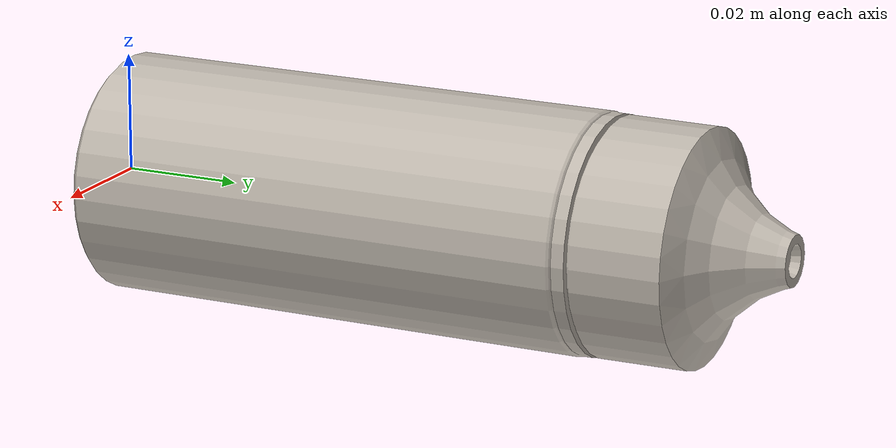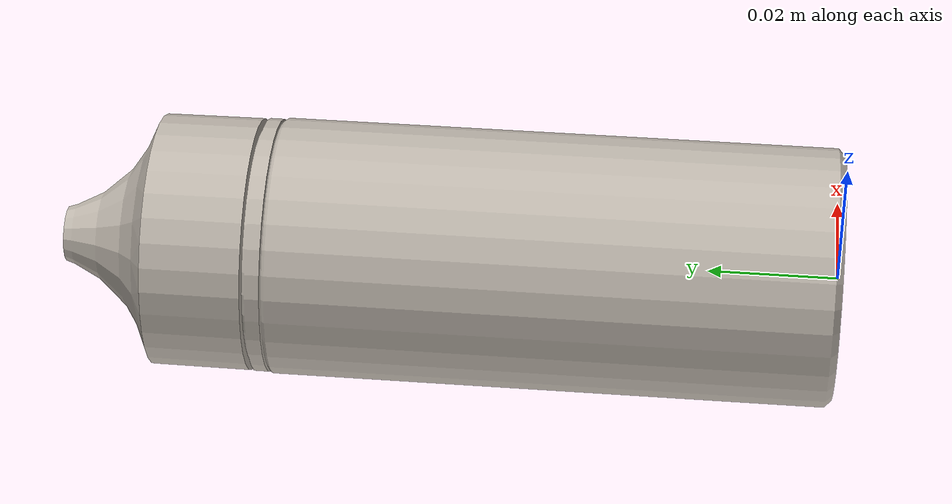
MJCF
<mujoco model="e4663f059f5f42e8933b7d1fb8191b7a">
  <default>
    <default class="visual">
      <geom group="2" type="mesh" contype="0" conaffinity="0"/>
    </default>
    <default class="collision">
      <geom group="3" type="mesh"/>
    </default>
  </default>
  <asset>
    <texture type="2d" name="dropper_low_poly" file="dropper_low_poly.png"/>
    <material name="dropper_low_poly" texture="dropper_low_poly" specular="0.4000000000000001" shininess="0.001"/>
    <mesh file="e4663f059f5f42e8933b7d1fb8191b7a.obj"/>
    <mesh file="e4663f059f5f42e8933b7d1fb8191b7a_collision_0.obj"/>
  </asset>
  <worldbody>
    <body name="e4663f059f5f42e8933b7d1fb8191b7a">
      <freejoint/>
      <geom material="dropper_low_poly" mesh="e4663f059f5f42e8933b7d1fb8191b7a" class="visual"/>
      <geom mesh="e4663f059f5f42e8933b7d1fb8191b7a_collision_0" rgba="0.25317026572486256 0.8278379605220267 0.4106824624190294 1" class="collision"/>
    </body>
  </worldbody>
</mujoco>
